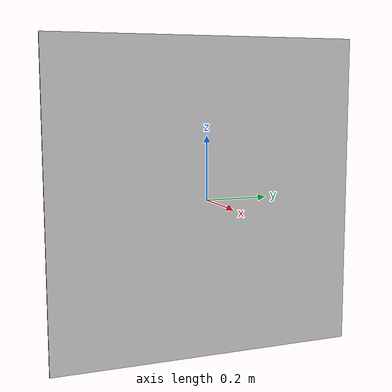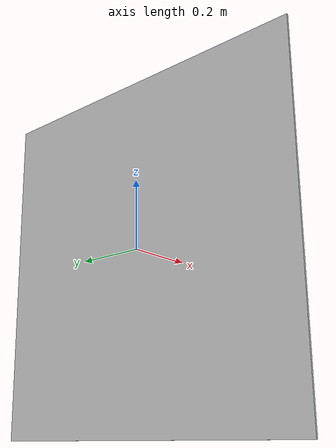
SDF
<?xml version="1.0" ?>
<sdf version="1.5">
  <model name="Ar_alvar_tag6">
    <static>true</static>
    <link name="link">
      <collision name="collision">
        <geometry>
          <mesh>
            <scale>5 5 5</scale>
            <uri>model://ar_alvar_tag6/meshes/artag.dae</uri>
          </mesh>
        </geometry>
      </collision>
      <visual name="visual">
        <geometry>
          <mesh>
            <scale>5 5 5</scale>
            <uri>model://ar_alvar_tag6/meshes/artag.dae</uri>
          </mesh>
        </geometry>
      </visual>
    </link>
  </model>
</sdf>
